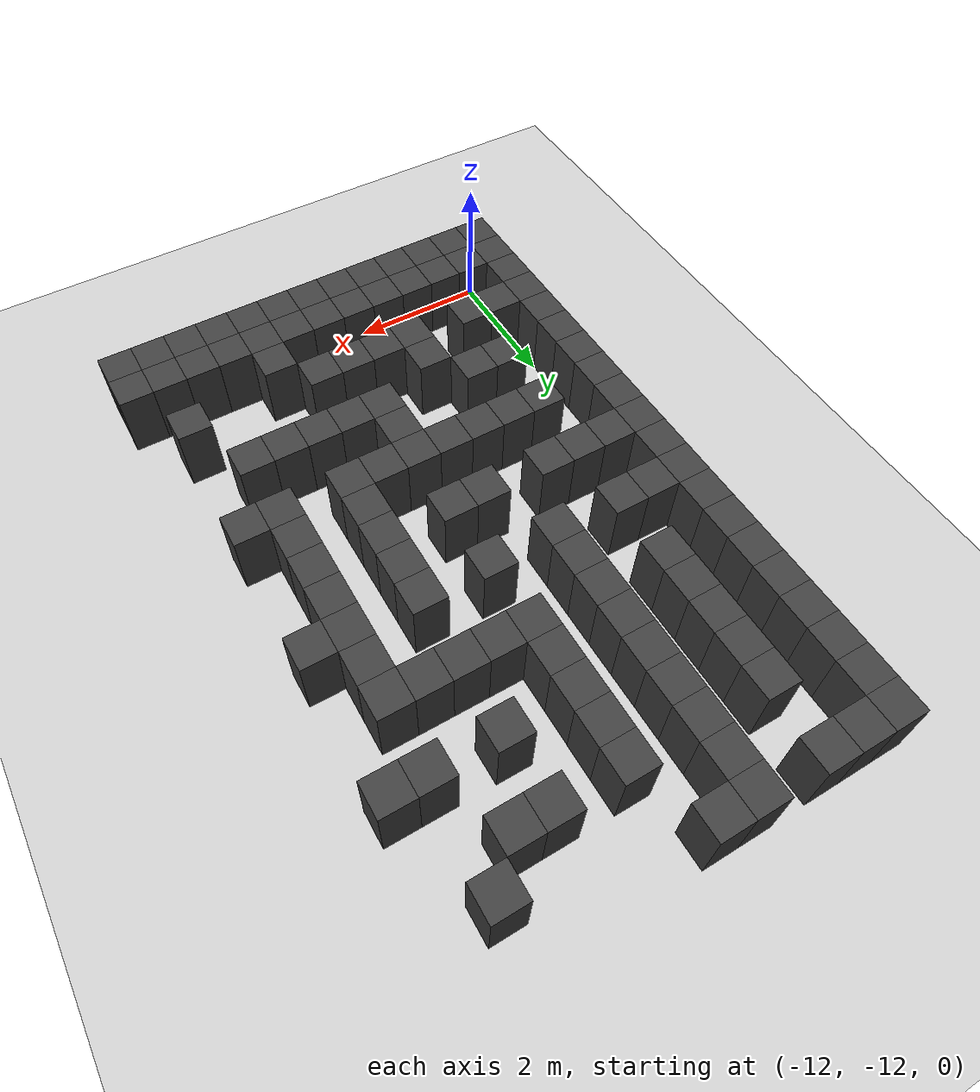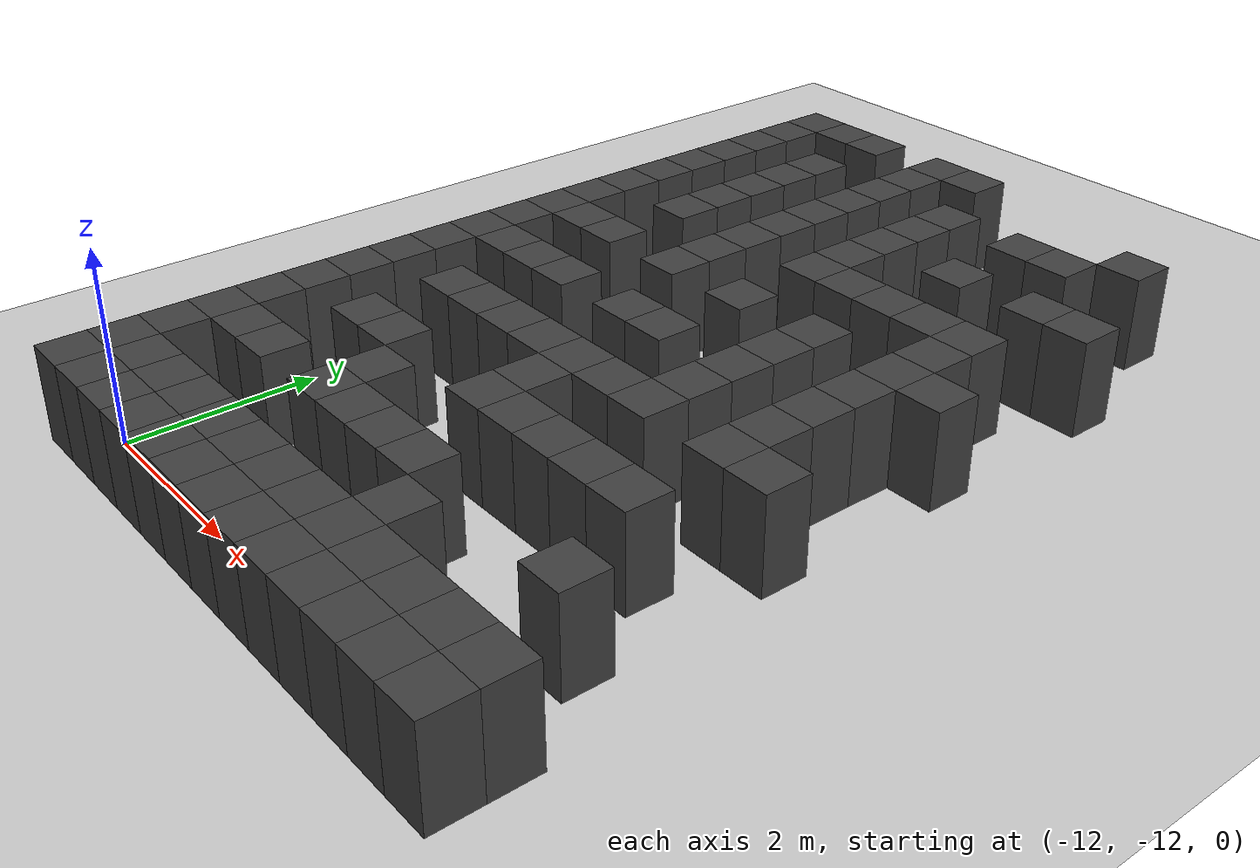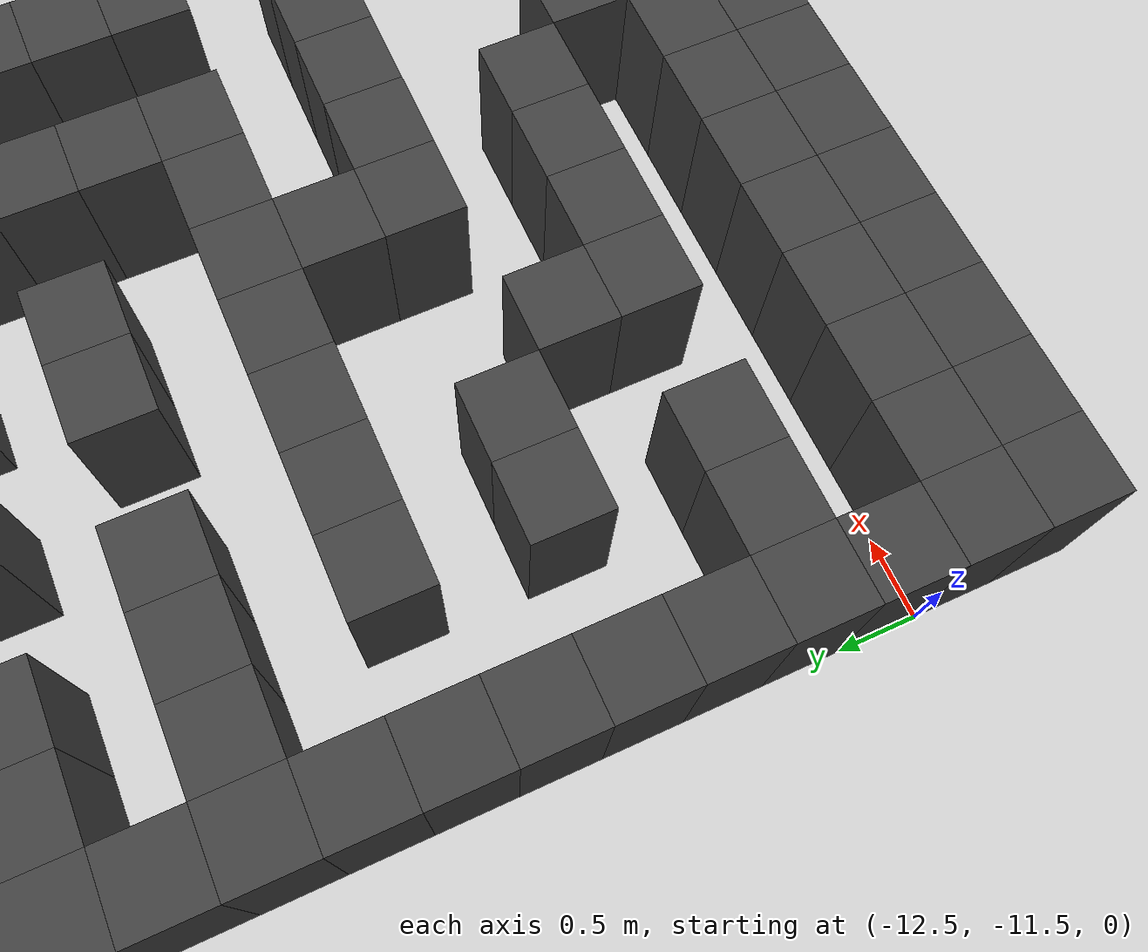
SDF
<sdf version="1.7">
 <world name="map_15168">
  <model name="ground_plane">
   <static>true</static>
   <link name="link">
    <collision name="collision">
     <geometry><plane><normal>0 0 1</normal><size>200 200</size></plane></geometry>
    </collision>
    <visual name="visual">
     <geometry><plane><normal>0 0 1</normal><size>200 200</size></plane></geometry>
     <material><ambient>0.8 0.8 0.8 1</ambient><diffuse>0.8 0.8 0.8 1</diffuse></material>
    </visual>
   </link>
  </model>
  <model name="maze_environment">
   <static>true</static>
   <link name="wall_701">
    <pose>-12.250 -2.750 0.500 0 0 0</pose>
    <collision name="col"><geometry><box><size>0.5 0.5 1.0</size></box></geometry></collision>
    <visual name="vis">
     <geometry><box><size>0.5 0.5 1.0</size></box></geometry>
     <material><ambient>0.15 0.15 0.15 1</ambient><diffuse>0.25 0.25 0.25 1</diffuse></material>
    </visual>
   </link>
   <link name="wall_702">
    <pose>-11.750 -2.750 0.500 0 0 0</pose>
    <collision name="col"><geometry><box><size>0.5 0.5 1.0</size></box></geometry></collision>
    <visual name="vis">
     <geometry><box><size>0.5 0.5 1.0</size></box></geometry>
     <material><ambient>0.15 0.15 0.15 1</ambient><diffuse>0.25 0.25 0.25 1</diffuse></material>
    </visual>
   </link>
   <link name="wall_703">
    <pose>-11.250 -2.750 0.500 0 0 0</pose>
    <collision name="col"><geometry><box><size>0.5 0.5 1.0</size></box></geometry></collision>
    <visual name="vis">
     <geometry><box><size>0.5 0.5 1.0</size></box></geometry>
     <material><ambient>0.15 0.15 0.15 1</ambient><diffuse>0.25 0.25 0.25 1</diffuse></material>
    </visual>
   </link>
   <link name="wall_704">
    <pose>-10.250 -2.750 0.500 0 0 0</pose>
    <collision name="col"><geometry><box><size>0.5 0.5 1.0</size></box></geometry></collision>
    <visual name="vis">
     <geometry><box><size>0.5 0.5 1.0</size></box></geometry>
     <material><ambient>0.15 0.15 0.15 1</ambient><diffuse>0.25 0.25 0.25 1</diffuse></material>
    </visual>
   </link>
   <link name="wall_705">
    <pose>-9.750 -2.750 0.500 0 0 0</pose>
    <collision name="col"><geometry><box><size>0.5 0.5 1.0</size></box></geometry></collision>
    <visual name="vis">
     <geometry><box><size>0.5 0.5 1.0</size></box></geometry>
     <material><ambient>0.15 0.15 0.15 1</ambient><diffuse>0.25 0.25 0.25 1</diffuse></material>
    </visual>
   </link>
   <link name="wall_732">
    <pose>-12.250 -3.250 0.500 0 0 0</pose>
    <collision name="col"><geometry><box><size>0.5 0.5 1.0</size></box></geometry></collision>
    <visual name="vis">
     <geometry><box><size>0.5 0.5 1.0</size></box></geometry>
     <material><ambient>0.15 0.15 0.15 1</ambient><diffuse>0.25 0.25 0.25 1</diffuse></material>
    </visual>
   </link>
   <link name="wall_733">
    <pose>-10.250 -3.250 0.500 0 0 0</pose>
    <collision name="col"><geometry><box><size>0.5 0.5 1.0</size></box></geometry></collision>
    <visual name="vis">
     <geometry><box><size>0.5 0.5 1.0</size></box></geometry>
     <material><ambient>0.15 0.15 0.15 1</ambient><diffuse>0.25 0.25 0.25 1</diffuse></material>
    </visual>
   </link>
   <link name="wall_734">
    <pose>-7.250 -3.250 0.500 0 0 0</pose>
    <collision name="col"><geometry><box><size>0.5 0.5 1.0</size></box></geometry></collision>
    <visual name="vis">
     <geometry><box><size>0.5 0.5 1.0</size></box></geometry>
     <material><ambient>0.15 0.15 0.15 1</ambient><diffuse>0.25 0.25 0.25 1</diffuse></material>
    </visual>
   </link>
   <link name="wall_748">
    <pose>-12.250 -3.750 0.500 0 0 0</pose>
    <collision name="col"><geometry><box><size>0.5 0.5 1.0</size></box></geometry></collision>
    <visual name="vis">
     <geometry><box><size>0.5 0.5 1.0</size></box></geometry>
     <material><ambient>0.15 0.15 0.15 1</ambient><diffuse>0.25 0.25 0.25 1</diffuse></material>
    </visual>
   </link>
   <link name="wall_749">
    <pose>-11.250 -3.750 0.500 0 0 0</pose>
    <collision name="col"><geometry><box><size>0.5 0.5 1.0</size></box></geometry></collision>
    <visual name="vis">
     <geometry><box><size>0.5 0.5 1.0</size></box></geometry>
     <material><ambient>0.15 0.15 0.15 1</ambient><diffuse>0.25 0.25 0.25 1</diffuse></material>
    </visual>
   </link>
   <link name="wall_750">
    <pose>-10.250 -3.750 0.500 0 0 0</pose>
    <collision name="col"><geometry><box><size>0.5 0.5 1.0</size></box></geometry></collision>
    <visual name="vis">
     <geometry><box><size>0.5 0.5 1.0</size></box></geometry>
     <material><ambient>0.15 0.15 0.15 1</ambient><diffuse>0.25 0.25 0.25 1</diffuse></material>
    </visual>
   </link>
   <link name="wall_751">
    <pose>-9.250 -3.750 0.500 0 0 0</pose>
    <collision name="col"><geometry><box><size>0.5 0.5 1.0</size></box></geometry></collision>
    <visual name="vis">
     <geometry><box><size>0.5 0.5 1.0</size></box></geometry>
     <material><ambient>0.15 0.15 0.15 1</ambient><diffuse>0.25 0.25 0.25 1</diffuse></material>
    </visual>
   </link>
   <link name="wall_752">
    <pose>-8.250 -3.750 0.500 0 0 0</pose>
    <collision name="col"><geometry><box><size>0.5 0.5 1.0</size></box></geometry></collision>
    <visual name="vis">
     <geometry><box><size>0.5 0.5 1.0</size></box></geometry>
     <material><ambient>0.15 0.15 0.15 1</ambient><diffuse>0.25 0.25 0.25 1</diffuse></material>
    </visual>
   </link>
   <link name="wall_753">
    <pose>-7.750 -3.750 0.500 0 0 0</pose>
    <collision name="col"><geometry><box><size>0.5 0.5 1.0</size></box></geometry></collision>
    <visual name="vis">
     <geometry><box><size>0.5 0.5 1.0</size></box></geometry>
     <material><ambient>0.15 0.15 0.15 1</ambient><diffuse>0.25 0.25 0.25 1</diffuse></material>
    </visual>
   </link>
   <link name="wall_772">
    <pose>-12.250 -4.250 0.500 0 0 0</pose>
    <collision name="col"><geometry><box><size>0.5 0.5 1.0</size></box></geometry></collision>
    <visual name="vis">
     <geometry><box><size>0.5 0.5 1.0</size></box></geometry>
     <material><ambient>0.15 0.15 0.15 1</ambient><diffuse>0.25 0.25 0.25 1</diffuse></material>
    </visual>
   </link>
   <link name="wall_773">
    <pose>-11.250 -4.250 0.500 0 0 0</pose>
    <collision name="col"><geometry><box><size>0.5 0.5 1.0</size></box></geometry></collision>
    <visual name="vis">
     <geometry><box><size>0.5 0.5 1.0</size></box></geometry>
     <material><ambient>0.15 0.15 0.15 1</ambient><diffuse>0.25 0.25 0.25 1</diffuse></material>
    </visual>
   </link>
   <link name="wall_774">
    <pose>-10.250 -4.250 0.500 0 0 0</pose>
    <collision name="col"><geometry><box><size>0.5 0.5 1.0</size></box></geometry></collision>
    <visual name="vis">
     <geometry><box><size>0.5 0.5 1.0</size></box></geometry>
     <material><ambient>0.15 0.15 0.15 1</ambient><diffuse>0.25 0.25 0.25 1</diffuse></material>
    </visual>
   </link>
   <link name="wall_775">
    <pose>-9.250 -4.250 0.500 0 0 0</pose>
    <collision name="col"><geometry><box><size>0.5 0.5 1.0</size></box></geometry></collision>
    <visual name="vis">
     <geometry><box><size>0.5 0.5 1.0</size></box></geometry>
     <material><ambient>0.15 0.15 0.15 1</ambient><diffuse>0.25 0.25 0.25 1</diffuse></material>
    </visual>
   </link>
   <link name="wall_785">
    <pose>-12.250 -4.750 0.500 0 0 0</pose>
    <collision name="col"><geometry><box><size>0.5 0.5 1.0</size></box></geometry></collision>
    <visual name="vis">
     <geometry><box><size>0.5 0.5 1.0</size></box></geometry>
     <material><ambient>0.15 0.15 0.15 1</ambient><diffuse>0.25 0.25 0.25 1</diffuse></material>
    </visual>
   </link>
   <link name="wall_786">
    <pose>-11.250 -4.750 0.500 0 0 0</pose>
    <collision name="col"><geometry><box><size>0.5 0.5 1.0</size></box></geometry></collision>
    <visual name="vis">
     <geometry><box><size>0.5 0.5 1.0</size></box></geometry>
     <material><ambient>0.15 0.15 0.15 1</ambient><diffuse>0.25 0.25 0.25 1</diffuse></material>
    </visual>
   </link>
   <link name="wall_787">
    <pose>-10.250 -4.750 0.500 0 0 0</pose>
    <collision name="col"><geometry><box><size>0.5 0.5 1.0</size></box></geometry></collision>
    <visual name="vis">
     <geometry><box><size>0.5 0.5 1.0</size></box></geometry>
     <material><ambient>0.15 0.15 0.15 1</ambient><diffuse>0.25 0.25 0.25 1</diffuse></material>
    </visual>
   </link>
   <link name="wall_788">
    <pose>-9.250 -4.750 0.500 0 0 0</pose>
    <collision name="col"><geometry><box><size>0.5 0.5 1.0</size></box></geometry></collision>
    <visual name="vis">
     <geometry><box><size>0.5 0.5 1.0</size></box></geometry>
     <material><ambient>0.15 0.15 0.15 1</ambient><diffuse>0.25 0.25 0.25 1</diffuse></material>
    </visual>
   </link>
   <link name="wall_789">
    <pose>-8.250 -4.750 0.500 0 0 0</pose>
    <collision name="col"><geometry><box><size>0.5 0.5 1.0</size></box></geometry></collision>
    <visual name="vis">
     <geometry><box><size>0.5 0.5 1.0</size></box></geometry>
     <material><ambient>0.15 0.15 0.15 1</ambient><diffuse>0.25 0.25 0.25 1</diffuse></material>
    </visual>
   </link>
   <link name="wall_790">
    <pose>-7.250 -4.750 0.500 0 0 0</pose>
    <collision name="col"><geometry><box><size>0.5 0.5 1.0</size></box></geometry></collision>
    <visual name="vis">
     <geometry><box><size>0.5 0.5 1.0</size></box></geometry>
     <material><ambient>0.15 0.15 0.15 1</ambient><diffuse>0.25 0.25 0.25 1</diffuse></material>
    </visual>
   </link>
   <link name="wall_791">
    <pose>-6.750 -4.750 0.500 0 0 0</pose>
    <collision name="col"><geometry><box><size>0.5 0.5 1.0</size></box></geometry></collision>
    <visual name="vis">
     <geometry><box><size>0.5 0.5 1.0</size></box></geometry>
     <material><ambient>0.15 0.15 0.15 1</ambient><diffuse>0.25 0.25 0.25 1</diffuse></material>
    </visual>
   </link>
   <link name="wall_816">
    <pose>-12.250 -5.250 0.500 0 0 0</pose>
    <collision name="col"><geometry><box><size>0.5 0.5 1.0</size></box></geometry></collision>
    <visual name="vis">
     <geometry><box><size>0.5 0.5 1.0</size></box></geometry>
     <material><ambient>0.15 0.15 0.15 1</ambient><diffuse>0.25 0.25 0.25 1</diffuse></material>
    </visual>
   </link>
   <link name="wall_817">
    <pose>-11.250 -5.250 0.500 0 0 0</pose>
    <collision name="col"><geometry><box><size>0.5 0.5 1.0</size></box></geometry></collision>
    <visual name="vis">
     <geometry><box><size>0.5 0.5 1.0</size></box></geometry>
     <material><ambient>0.15 0.15 0.15 1</ambient><diffuse>0.25 0.25 0.25 1</diffuse></material>
    </visual>
   </link>
   <link name="wall_818">
    <pose>-10.250 -5.250 0.500 0 0 0</pose>
    <collision name="col"><geometry><box><size>0.5 0.5 1.0</size></box></geometry></collision>
    <visual name="vis">
     <geometry><box><size>0.5 0.5 1.0</size></box></geometry>
     <material><ambient>0.15 0.15 0.15 1</ambient><diffuse>0.25 0.25 0.25 1</diffuse></material>
    </visual>
   </link>
   <link name="wall_819">
    <pose>-9.250 -5.250 0.500 0 0 0</pose>
    <collision name="col"><geometry><box><size>0.5 0.5 1.0</size></box></geometry></collision>
    <visual name="vis">
     <geometry><box><size>0.5 0.5 1.0</size></box></geometry>
     <material><ambient>0.15 0.15 0.15 1</ambient><diffuse>0.25 0.25 0.25 1</diffuse></material>
    </visual>
   </link>
   <link name="wall_829">
    <pose>-12.250 -5.750 0.500 0 0 0</pose>
    <collision name="col"><geometry><box><size>0.5 0.5 1.0</size></box></geometry></collision>
    <visual name="vis">
     <geometry><box><size>0.5 0.5 1.0</size></box></geometry>
     <material><ambient>0.15 0.15 0.15 1</ambient><diffuse>0.25 0.25 0.25 1</diffuse></material>
    </visual>
   </link>
   <link name="wall_830">
    <pose>-11.250 -5.750 0.500 0 0 0</pose>
    <collision name="col"><geometry><box><size>0.5 0.5 1.0</size></box></geometry></collision>
    <visual name="vis">
     <geometry><box><size>0.5 0.5 1.0</size></box></geometry>
     <material><ambient>0.15 0.15 0.15 1</ambient><diffuse>0.25 0.25 0.25 1</diffuse></material>
    </visual>
   </link>
   <link name="wall_831">
    <pose>-10.250 -5.750 0.500 0 0 0</pose>
    <collision name="col"><geometry><box><size>0.5 0.5 1.0</size></box></geometry></collision>
    <visual name="vis">
     <geometry><box><size>0.5 0.5 1.0</size></box></geometry>
     <material><ambient>0.15 0.15 0.15 1</ambient><diffuse>0.25 0.25 0.25 1</diffuse></material>
    </visual>
   </link>
   <link name="wall_832">
    <pose>-9.250 -5.750 0.500 0 0 0</pose>
    <collision name="col"><geometry><box><size>0.5 0.5 1.0</size></box></geometry></collision>
    <visual name="vis">
     <geometry><box><size>0.5 0.5 1.0</size></box></geometry>
     <material><ambient>0.15 0.15 0.15 1</ambient><diffuse>0.25 0.25 0.25 1</diffuse></material>
    </visual>
   </link>
   <link name="wall_833">
    <pose>-8.750 -5.750 0.500 0 0 0</pose>
    <collision name="col"><geometry><box><size>0.5 0.5 1.0</size></box></geometry></collision>
    <visual name="vis">
     <geometry><box><size>0.5 0.5 1.0</size></box></geometry>
     <material><ambient>0.15 0.15 0.15 1</ambient><diffuse>0.25 0.25 0.25 1</diffuse></material>
    </visual>
   </link>
   <link name="wall_834">
    <pose>-8.250 -5.750 0.500 0 0 0</pose>
    <collision name="col"><geometry><box><size>0.5 0.5 1.0</size></box></geometry></collision>
    <visual name="vis">
     <geometry><box><size>0.5 0.5 1.0</size></box></geometry>
     <material><ambient>0.15 0.15 0.15 1</ambient><diffuse>0.25 0.25 0.25 1</diffuse></material>
    </visual>
   </link>
   <link name="wall_835">
    <pose>-7.750 -5.750 0.500 0 0 0</pose>
    <collision name="col"><geometry><box><size>0.5 0.5 1.0</size></box></geometry></collision>
    <visual name="vis">
     <geometry><box><size>0.5 0.5 1.0</size></box></geometry>
     <material><ambient>0.15 0.15 0.15 1</ambient><diffuse>0.25 0.25 0.25 1</diffuse></material>
    </visual>
   </link>
   <link name="wall_836">
    <pose>-7.250 -5.750 0.500 0 0 0</pose>
    <collision name="col"><geometry><box><size>0.5 0.5 1.0</size></box></geometry></collision>
    <visual name="vis">
     <geometry><box><size>0.5 0.5 1.0</size></box></geometry>
     <material><ambient>0.15 0.15 0.15 1</ambient><diffuse>0.25 0.25 0.25 1</diffuse></material>
    </visual>
   </link>
   <link name="wall_864">
    <pose>-12.250 -6.250 0.500 0 0 0</pose>
    <collision name="col"><geometry><box><size>0.5 0.5 1.0</size></box></geometry></collision>
    <visual name="vis">
     <geometry><box><size>0.5 0.5 1.0</size></box></geometry>
     <material><ambient>0.15 0.15 0.15 1</ambient><diffuse>0.25 0.25 0.25 1</diffuse></material>
    </visual>
   </link>
   <link name="wall_865">
    <pose>-10.250 -6.250 0.500 0 0 0</pose>
    <collision name="col"><geometry><box><size>0.5 0.5 1.0</size></box></geometry></collision>
    <visual name="vis">
     <geometry><box><size>0.5 0.5 1.0</size></box></geometry>
     <material><ambient>0.15 0.15 0.15 1</ambient><diffuse>0.25 0.25 0.25 1</diffuse></material>
    </visual>
   </link>
   <link name="wall_866">
    <pose>-7.250 -6.250 0.500 0 0 0</pose>
    <collision name="col"><geometry><box><size>0.5 0.5 1.0</size></box></geometry></collision>
    <visual name="vis">
     <geometry><box><size>0.5 0.5 1.0</size></box></geometry>
     <material><ambient>0.15 0.15 0.15 1</ambient><diffuse>0.25 0.25 0.25 1</diffuse></material>
    </visual>
   </link>
   <link name="wall_874">
    <pose>-12.250 -6.750 0.500 0 0 0</pose>
    <collision name="col"><geometry><box><size>0.5 0.5 1.0</size></box></geometry></collision>
    <visual name="vis">
     <geometry><box><size>0.5 0.5 1.0</size></box></geometry>
     <material><ambient>0.15 0.15 0.15 1</ambient><diffuse>0.25 0.25 0.25 1</diffuse></material>
    </visual>
   </link>
   <link name="wall_875">
    <pose>-11.750 -6.750 0.500 0 0 0</pose>
    <collision name="col"><geometry><box><size>0.5 0.5 1.0</size></box></geometry></collision>
    <visual name="vis">
     <geometry><box><size>0.5 0.5 1.0</size></box></geometry>
     <material><ambient>0.15 0.15 0.15 1</ambient><diffuse>0.25 0.25 0.25 1</diffuse></material>
    </visual>
   </link>
   <link name="wall_876">
    <pose>-11.250 -6.750 0.500 0 0 0</pose>
    <collision name="col"><geometry><box><size>0.5 0.5 1.0</size></box></geometry></collision>
    <visual name="vis">
     <geometry><box><size>0.5 0.5 1.0</size></box></geometry>
     <material><ambient>0.15 0.15 0.15 1</ambient><diffuse>0.25 0.25 0.25 1</diffuse></material>
    </visual>
   </link>
   <link name="wall_877">
    <pose>-10.250 -6.750 0.500 0 0 0</pose>
    <collision name="col"><geometry><box><size>0.5 0.5 1.0</size></box></geometry></collision>
    <visual name="vis">
     <geometry><box><size>0.5 0.5 1.0</size></box></geometry>
     <material><ambient>0.15 0.15 0.15 1</ambient><diffuse>0.25 0.25 0.25 1</diffuse></material>
    </visual>
   </link>
   <link name="wall_878">
    <pose>-9.250 -6.750 0.500 0 0 0</pose>
    <collision name="col"><geometry><box><size>0.5 0.5 1.0</size></box></geometry></collision>
    <visual name="vis">
     <geometry><box><size>0.5 0.5 1.0</size></box></geometry>
     <material><ambient>0.15 0.15 0.15 1</ambient><diffuse>0.25 0.25 0.25 1</diffuse></material>
    </visual>
   </link>
   <link name="wall_879">
    <pose>-8.250 -6.750 0.500 0 0 0</pose>
    <collision name="col"><geometry><box><size>0.5 0.5 1.0</size></box></geometry></collision>
    <visual name="vis">
     <geometry><box><size>0.5 0.5 1.0</size></box></geometry>
     <material><ambient>0.15 0.15 0.15 1</ambient><diffuse>0.25 0.25 0.25 1</diffuse></material>
    </visual>
   </link>
   <link name="wall_880">
    <pose>-7.250 -6.750 0.500 0 0 0</pose>
    <collision name="col"><geometry><box><size>0.5 0.5 1.0</size></box></geometry></collision>
    <visual name="vis">
     <geometry><box><size>0.5 0.5 1.0</size></box></geometry>
     <material><ambient>0.15 0.15 0.15 1</ambient><diffuse>0.25 0.25 0.25 1</diffuse></material>
    </visual>
   </link>
   <link name="wall_881">
    <pose>-6.750 -6.750 0.500 0 0 0</pose>
    <collision name="col"><geometry><box><size>0.5 0.5 1.0</size></box></geometry></collision>
    <visual name="vis">
     <geometry><box><size>0.5 0.5 1.0</size></box></geometry>
     <material><ambient>0.15 0.15 0.15 1</ambient><diffuse>0.25 0.25 0.25 1</diffuse></material>
    </visual>
   </link>
   <link name="wall_912">
    <pose>-12.250 -7.250 0.500 0 0 0</pose>
    <collision name="col"><geometry><box><size>0.5 0.5 1.0</size></box></geometry></collision>
    <visual name="vis">
     <geometry><box><size>0.5 0.5 1.0</size></box></geometry>
     <material><ambient>0.15 0.15 0.15 1</ambient><diffuse>0.25 0.25 0.25 1</diffuse></material>
    </visual>
   </link>
   <link name="wall_913">
    <pose>-8.250 -7.250 0.500 0 0 0</pose>
    <collision name="col"><geometry><box><size>0.5 0.5 1.0</size></box></geometry></collision>
    <visual name="vis">
     <geometry><box><size>0.5 0.5 1.0</size></box></geometry>
     <material><ambient>0.15 0.15 0.15 1</ambient><diffuse>0.25 0.25 0.25 1</diffuse></material>
    </visual>
   </link>
   <link name="wall_914">
    <pose>-7.250 -7.250 0.500 0 0 0</pose>
    <collision name="col"><geometry><box><size>0.5 0.5 1.0</size></box></geometry></collision>
    <visual name="vis">
     <geometry><box><size>0.5 0.5 1.0</size></box></geometry>
     <material><ambient>0.15 0.15 0.15 1</ambient><diffuse>0.25 0.25 0.25 1</diffuse></material>
    </visual>
   </link>
   <link name="wall_923">
    <pose>-12.250 -7.750 0.500 0 0 0</pose>
    <collision name="col"><geometry><box><size>0.5 0.5 1.0</size></box></geometry></collision>
    <visual name="vis">
     <geometry><box><size>0.5 0.5 1.0</size></box></geometry>
     <material><ambient>0.15 0.15 0.15 1</ambient><diffuse>0.25 0.25 0.25 1</diffuse></material>
    </visual>
   </link>
   <link name="wall_924">
    <pose>-11.750 -7.750 0.500 0 0 0</pose>
    <collision name="col"><geometry><box><size>0.5 0.5 1.0</size></box></geometry></collision>
    <visual name="vis">
     <geometry><box><size>0.5 0.5 1.0</size></box></geometry>
     <material><ambient>0.15 0.15 0.15 1</ambient><diffuse>0.25 0.25 0.25 1</diffuse></material>
    </visual>
   </link>
   <link name="wall_925">
    <pose>-11.250 -7.750 0.500 0 0 0</pose>
    <collision name="col"><geometry><box><size>0.5 0.5 1.0</size></box></geometry></collision>
    <visual name="vis">
     <geometry><box><size>0.5 0.5 1.0</size></box></geometry>
     <material><ambient>0.15 0.15 0.15 1</ambient><diffuse>0.25 0.25 0.25 1</diffuse></material>
    </visual>
   </link>
   <link name="wall_926">
    <pose>-10.750 -7.750 0.500 0 0 0</pose>
    <collision name="col"><geometry><box><size>0.5 0.5 1.0</size></box></geometry></collision>
    <visual name="vis">
     <geometry><box><size>0.5 0.5 1.0</size></box></geometry>
     <material><ambient>0.15 0.15 0.15 1</ambient><diffuse>0.25 0.25 0.25 1</diffuse></material>
    </visual>
   </link>
   <link name="wall_927">
    <pose>-9.750 -7.750 0.500 0 0 0</pose>
    <collision name="col"><geometry><box><size>0.5 0.5 1.0</size></box></geometry></collision>
    <visual name="vis">
     <geometry><box><size>0.5 0.5 1.0</size></box></geometry>
     <material><ambient>0.15 0.15 0.15 1</ambient><diffuse>0.25 0.25 0.25 1</diffuse></material>
    </visual>
   </link>
   <link name="wall_928">
    <pose>-9.250 -7.750 0.500 0 0 0</pose>
    <collision name="col"><geometry><box><size>0.5 0.5 1.0</size></box></geometry></collision>
    <visual name="vis">
     <geometry><box><size>0.5 0.5 1.0</size></box></geometry>
     <material><ambient>0.15 0.15 0.15 1</ambient><diffuse>0.25 0.25 0.25 1</diffuse></material>
    </visual>
   </link>
   <link name="wall_929">
    <pose>-8.250 -7.750 0.500 0 0 0</pose>
    <collision name="col"><geometry><box><size>0.5 0.5 1.0</size></box></geometry></collision>
    <visual name="vis">
     <geometry><box><size>0.5 0.5 1.0</size></box></geometry>
     <material><ambient>0.15 0.15 0.15 1</ambient><diffuse>0.25 0.25 0.25 1</diffuse></material>
    </visual>
   </link>
   <link name="wall_930">
    <pose>-7.250 -7.750 0.500 0 0 0</pose>
    <collision name="col"><geometry><box><size>0.5 0.5 1.0</size></box></geometry></collision>
    <visual name="vis">
     <geometry><box><size>0.5 0.5 1.0</size></box></geometry>
     <material><ambient>0.15 0.15 0.15 1</ambient><diffuse>0.25 0.25 0.25 1</diffuse></material>
    </visual>
   </link>
   <link name="wall_955">
    <pose>-12.250 -8.250 0.500 0 0 0</pose>
    <collision name="col"><geometry><box><size>0.5 0.5 1.0</size></box></geometry></collision>
    <visual name="vis">
     <geometry><box><size>0.5 0.5 1.0</size></box></geometry>
     <material><ambient>0.15 0.15 0.15 1</ambient><diffuse>0.25 0.25 0.25 1</diffuse></material>
    </visual>
   </link>
   <link name="wall_956">
    <pose>-8.250 -8.250 0.500 0 0 0</pose>
    <collision name="col"><geometry><box><size>0.5 0.5 1.0</size></box></geometry></collision>
    <visual name="vis">
     <geometry><box><size>0.5 0.5 1.0</size></box></geometry>
     <material><ambient>0.15 0.15 0.15 1</ambient><diffuse>0.25 0.25 0.25 1</diffuse></material>
    </visual>
   </link>
   <link name="wall_957">
    <pose>-7.250 -8.250 0.500 0 0 0</pose>
    <collision name="col"><geometry><box><size>0.5 0.5 1.0</size></box></geometry></collision>
    <visual name="vis">
     <geometry><box><size>0.5 0.5 1.0</size></box></geometry>
     <material><ambient>0.15 0.15 0.15 1</ambient><diffuse>0.25 0.25 0.25 1</diffuse></material>
    </visual>
   </link>
   <link name="wall_968">
    <pose>-12.250 -8.750 0.500 0 0 0</pose>
    <collision name="col"><geometry><box><size>0.5 0.5 1.0</size></box></geometry></collision>
    <visual name="vis">
     <geometry><box><size>0.5 0.5 1.0</size></box></geometry>
     <material><ambient>0.15 0.15 0.15 1</ambient><diffuse>0.25 0.25 0.25 1</diffuse></material>
    </visual>
   </link>
   <link name="wall_969">
    <pose>-11.250 -8.750 0.500 0 0 0</pose>
    <collision name="col"><geometry><box><size>0.5 0.5 1.0</size></box></geometry></collision>
    <visual name="vis">
     <geometry><box><size>0.5 0.5 1.0</size></box></geometry>
     <material><ambient>0.15 0.15 0.15 1</ambient><diffuse>0.25 0.25 0.25 1</diffuse></material>
    </visual>
   </link>
   <link name="wall_970">
    <pose>-10.750 -8.750 0.500 0 0 0</pose>
    <collision name="col"><geometry><box><size>0.5 0.5 1.0</size></box></geometry></collision>
    <visual name="vis">
     <geometry><box><size>0.5 0.5 1.0</size></box></geometry>
     <material><ambient>0.15 0.15 0.15 1</ambient><diffuse>0.25 0.25 0.25 1</diffuse></material>
    </visual>
   </link>
   <link name="wall_971">
    <pose>-10.250 -8.750 0.500 0 0 0</pose>
    <collision name="col"><geometry><box><size>0.5 0.5 1.0</size></box></geometry></collision>
    <visual name="vis">
     <geometry><box><size>0.5 0.5 1.0</size></box></geometry>
     <material><ambient>0.15 0.15 0.15 1</ambient><diffuse>0.25 0.25 0.25 1</diffuse></material>
    </visual>
   </link>
   <link name="wall_972">
    <pose>-9.750 -8.750 0.500 0 0 0</pose>
    <collision name="col"><geometry><box><size>0.5 0.5 1.0</size></box></geometry></collision>
    <visual name="vis">
     <geometry><box><size>0.5 0.5 1.0</size></box></geometry>
     <material><ambient>0.15 0.15 0.15 1</ambient><diffuse>0.25 0.25 0.25 1</diffuse></material>
    </visual>
   </link>
   <link name="wall_973">
    <pose>-9.250 -8.750 0.500 0 0 0</pose>
    <collision name="col"><geometry><box><size>0.5 0.5 1.0</size></box></geometry></collision>
    <visual name="vis">
     <geometry><box><size>0.5 0.5 1.0</size></box></geometry>
     <material><ambient>0.15 0.15 0.15 1</ambient><diffuse>0.25 0.25 0.25 1</diffuse></material>
    </visual>
   </link>
   <link name="wall_974">
    <pose>-8.750 -8.750 0.500 0 0 0</pose>
    <collision name="col"><geometry><box><size>0.5 0.5 1.0</size></box></geometry></collision>
    <visual name="vis">
     <geometry><box><size>0.5 0.5 1.0</size></box></geometry>
     <material><ambient>0.15 0.15 0.15 1</ambient><diffuse>0.25 0.25 0.25 1</diffuse></material>
    </visual>
   </link>
   <link name="wall_975">
    <pose>-8.250 -8.750 0.500 0 0 0</pose>
    <collision name="col"><geometry><box><size>0.5 0.5 1.0</size></box></geometry></collision>
    <visual name="vis">
     <geometry><box><size>0.5 0.5 1.0</size></box></geometry>
     <material><ambient>0.15 0.15 0.15 1</ambient><diffuse>0.25 0.25 0.25 1</diffuse></material>
    </visual>
   </link>
   <link name="wall_976">
    <pose>-7.250 -8.750 0.500 0 0 0</pose>
    <collision name="col"><geometry><box><size>0.5 0.5 1.0</size></box></geometry></collision>
    <visual name="vis">
     <geometry><box><size>0.5 0.5 1.0</size></box></geometry>
     <material><ambient>0.15 0.15 0.15 1</ambient><diffuse>0.25 0.25 0.25 1</diffuse></material>
    </visual>
   </link>
   <link name="wall_977">
    <pose>-6.750 -8.750 0.500 0 0 0</pose>
    <collision name="col"><geometry><box><size>0.5 0.5 1.0</size></box></geometry></collision>
    <visual name="vis">
     <geometry><box><size>0.5 0.5 1.0</size></box></geometry>
     <material><ambient>0.15 0.15 0.15 1</ambient><diffuse>0.25 0.25 0.25 1</diffuse></material>
    </visual>
   </link>
   <link name="wall_1004">
    <pose>-12.250 -9.250 0.500 0 0 0</pose>
    <collision name="col"><geometry><box><size>0.5 0.5 1.0</size></box></geometry></collision>
    <visual name="vis">
     <geometry><box><size>0.5 0.5 1.0</size></box></geometry>
     <material><ambient>0.15 0.15 0.15 1</ambient><diffuse>0.25 0.25 0.25 1</diffuse></material>
    </visual>
   </link>
   <link name="wall_1005">
    <pose>-9.250 -9.250 0.500 0 0 0</pose>
    <collision name="col"><geometry><box><size>0.5 0.5 1.0</size></box></geometry></collision>
    <visual name="vis">
     <geometry><box><size>0.5 0.5 1.0</size></box></geometry>
     <material><ambient>0.15 0.15 0.15 1</ambient><diffuse>0.25 0.25 0.25 1</diffuse></material>
    </visual>
   </link>
   <link name="wall_1014">
    <pose>-12.250 -9.750 0.500 0 0 0</pose>
    <collision name="col"><geometry><box><size>0.5 0.5 1.0</size></box></geometry></collision>
    <visual name="vis">
     <geometry><box><size>0.5 0.5 1.0</size></box></geometry>
     <material><ambient>0.15 0.15 0.15 1</ambient><diffuse>0.25 0.25 0.25 1</diffuse></material>
    </visual>
   </link>
   <link name="wall_1015">
    <pose>-11.250 -9.750 0.500 0 0 0</pose>
    <collision name="col"><geometry><box><size>0.5 0.5 1.0</size></box></geometry></collision>
    <visual name="vis">
     <geometry><box><size>0.5 0.5 1.0</size></box></geometry>
     <material><ambient>0.15 0.15 0.15 1</ambient><diffuse>0.25 0.25 0.25 1</diffuse></material>
    </visual>
   </link>
   <link name="wall_1016">
    <pose>-10.750 -9.750 0.500 0 0 0</pose>
    <collision name="col"><geometry><box><size>0.5 0.5 1.0</size></box></geometry></collision>
    <visual name="vis">
     <geometry><box><size>0.5 0.5 1.0</size></box></geometry>
     <material><ambient>0.15 0.15 0.15 1</ambient><diffuse>0.25 0.25 0.25 1</diffuse></material>
    </visual>
   </link>
   <link name="wall_1017">
    <pose>-9.250 -9.750 0.500 0 0 0</pose>
    <collision name="col"><geometry><box><size>0.5 0.5 1.0</size></box></geometry></collision>
    <visual name="vis">
     <geometry><box><size>0.5 0.5 1.0</size></box></geometry>
     <material><ambient>0.15 0.15 0.15 1</ambient><diffuse>0.25 0.25 0.25 1</diffuse></material>
    </visual>
   </link>
   <link name="wall_1018">
    <pose>-8.750 -9.750 0.500 0 0 0</pose>
    <collision name="col"><geometry><box><size>0.5 0.5 1.0</size></box></geometry></collision>
    <visual name="vis">
     <geometry><box><size>0.5 0.5 1.0</size></box></geometry>
     <material><ambient>0.15 0.15 0.15 1</ambient><diffuse>0.25 0.25 0.25 1</diffuse></material>
    </visual>
   </link>
   <link name="wall_1019">
    <pose>-8.250 -9.750 0.500 0 0 0</pose>
    <collision name="col"><geometry><box><size>0.5 0.5 1.0</size></box></geometry></collision>
    <visual name="vis">
     <geometry><box><size>0.5 0.5 1.0</size></box></geometry>
     <material><ambient>0.15 0.15 0.15 1</ambient><diffuse>0.25 0.25 0.25 1</diffuse></material>
    </visual>
   </link>
   <link name="wall_1020">
    <pose>-7.750 -9.750 0.500 0 0 0</pose>
    <collision name="col"><geometry><box><size>0.5 0.5 1.0</size></box></geometry></collision>
    <visual name="vis">
     <geometry><box><size>0.5 0.5 1.0</size></box></geometry>
     <material><ambient>0.15 0.15 0.15 1</ambient><diffuse>0.25 0.25 0.25 1</diffuse></material>
    </visual>
   </link>
   <link name="wall_1021">
    <pose>-7.250 -9.750 0.500 0 0 0</pose>
    <collision name="col"><geometry><box><size>0.5 0.5 1.0</size></box></geometry></collision>
    <visual name="vis">
     <geometry><box><size>0.5 0.5 1.0</size></box></geometry>
     <material><ambient>0.15 0.15 0.15 1</ambient><diffuse>0.25 0.25 0.25 1</diffuse></material>
    </visual>
   </link>
   <link name="wall_1049">
    <pose>-12.250 -10.250 0.500 0 0 0</pose>
    <collision name="col"><geometry><box><size>0.5 0.5 1.0</size></box></geometry></collision>
    <visual name="vis">
     <geometry><box><size>0.5 0.5 1.0</size></box></geometry>
     <material><ambient>0.15 0.15 0.15 1</ambient><diffuse>0.25 0.25 0.25 1</diffuse></material>
    </visual>
   </link>
   <link name="wall_1050">
    <pose>-10.250 -10.250 0.500 0 0 0</pose>
    <collision name="col"><geometry><box><size>0.5 0.5 1.0</size></box></geometry></collision>
    <visual name="vis">
     <geometry><box><size>0.5 0.5 1.0</size></box></geometry>
     <material><ambient>0.15 0.15 0.15 1</ambient><diffuse>0.25 0.25 0.25 1</diffuse></material>
    </visual>
   </link>
   <link name="wall_1062">
    <pose>-12.250 -10.750 0.500 0 0 0</pose>
    <collision name="col"><geometry><box><size>0.5 0.5 1.0</size></box></geometry></collision>
    <visual name="vis">
     <geometry><box><size>0.5 0.5 1.0</size></box></geometry>
     <material><ambient>0.15 0.15 0.15 1</ambient><diffuse>0.25 0.25 0.25 1</diffuse></material>
    </visual>
   </link>
   <link name="wall_1063">
    <pose>-11.750 -10.750 0.500 0 0 0</pose>
    <collision name="col"><geometry><box><size>0.5 0.5 1.0</size></box></geometry></collision>
    <visual name="vis">
     <geometry><box><size>0.5 0.5 1.0</size></box></geometry>
     <material><ambient>0.15 0.15 0.15 1</ambient><diffuse>0.25 0.25 0.25 1</diffuse></material>
    </visual>
   </link>
   <link name="wall_1064">
    <pose>-11.250 -10.750 0.500 0 0 0</pose>
    <collision name="col"><geometry><box><size>0.5 0.5 1.0</size></box></geometry></collision>
    <visual name="vis">
     <geometry><box><size>0.5 0.5 1.0</size></box></geometry>
     <material><ambient>0.15 0.15 0.15 1</ambient><diffuse>0.25 0.25 0.25 1</diffuse></material>
    </visual>
   </link>
   <link name="wall_1065">
    <pose>-10.250 -10.750 0.500 0 0 0</pose>
    <collision name="col"><geometry><box><size>0.5 0.5 1.0</size></box></geometry></collision>
    <visual name="vis">
     <geometry><box><size>0.5 0.5 1.0</size></box></geometry>
     <material><ambient>0.15 0.15 0.15 1</ambient><diffuse>0.25 0.25 0.25 1</diffuse></material>
    </visual>
   </link>
   <link name="wall_1066">
    <pose>-9.750 -10.750 0.500 0 0 0</pose>
    <collision name="col"><geometry><box><size>0.5 0.5 1.0</size></box></geometry></collision>
    <visual name="vis">
     <geometry><box><size>0.5 0.5 1.0</size></box></geometry>
     <material><ambient>0.15 0.15 0.15 1</ambient><diffuse>0.25 0.25 0.25 1</diffuse></material>
    </visual>
   </link>
   <link name="wall_1067">
    <pose>-9.250 -10.750 0.500 0 0 0</pose>
    <collision name="col"><geometry><box><size>0.5 0.5 1.0</size></box></geometry></collision>
    <visual name="vis">
     <geometry><box><size>0.5 0.5 1.0</size></box></geometry>
     <material><ambient>0.15 0.15 0.15 1</ambient><diffuse>0.25 0.25 0.25 1</diffuse></material>
    </visual>
   </link>
   <link name="wall_1068">
    <pose>-8.750 -10.750 0.500 0 0 0</pose>
    <collision name="col"><geometry><box><size>0.5 0.5 1.0</size></box></geometry></collision>
    <visual name="vis">
     <geometry><box><size>0.5 0.5 1.0</size></box></geometry>
     <material><ambient>0.15 0.15 0.15 1</ambient><diffuse>0.25 0.25 0.25 1</diffuse></material>
    </visual>
   </link>
   <link name="wall_1069">
    <pose>-6.750 -10.750 0.500 0 0 0</pose>
    <collision name="col"><geometry><box><size>0.5 0.5 1.0</size></box></geometry></collision>
    <visual name="vis">
     <geometry><box><size>0.5 0.5 1.0</size></box></geometry>
     <material><ambient>0.15 0.15 0.15 1</ambient><diffuse>0.25 0.25 0.25 1</diffuse></material>
    </visual>
   </link>
   <link name="wall_1098">
    <pose>-12.250 -11.250 0.500 0 0 0</pose>
    <collision name="col"><geometry><box><size>0.5 0.5 1.0</size></box></geometry></collision>
    <visual name="vis">
     <geometry><box><size>0.5 0.5 1.0</size></box></geometry>
     <material><ambient>0.15 0.15 0.15 1</ambient><diffuse>0.25 0.25 0.25 1</diffuse></material>
    </visual>
   </link>
   <link name="wall_1099">
    <pose>-8.250 -11.250 0.500 0 0 0</pose>
    <collision name="col"><geometry><box><size>0.5 0.5 1.0</size></box></geometry></collision>
    <visual name="vis">
     <geometry><box><size>0.5 0.5 1.0</size></box></geometry>
     <material><ambient>0.15 0.15 0.15 1</ambient><diffuse>0.25 0.25 0.25 1</diffuse></material>
    </visual>
   </link>
   <link name="wall_1103">
    <pose>-12.250 -11.750 0.500 0 0 0</pose>
    <collision name="col"><geometry><box><size>0.5 0.5 1.0</size></box></geometry></collision>
    <visual name="vis">
     <geometry><box><size>0.5 0.5 1.0</size></box></geometry>
     <material><ambient>0.15 0.15 0.15 1</ambient><diffuse>0.25 0.25 0.25 1</diffuse></material>
    </visual>
   </link>
   <link name="wall_1104">
    <pose>-11.750 -11.750 0.500 0 0 0</pose>
    <collision name="col"><geometry><box><size>0.5 0.5 1.0</size></box></geometry></collision>
    <visual name="vis">
     <geometry><box><size>0.5 0.5 1.0</size></box></geometry>
     <material><ambient>0.15 0.15 0.15 1</ambient><diffuse>0.25 0.25 0.25 1</diffuse></material>
    </visual>
   </link>
   <link name="wall_1105">
    <pose>-11.250 -11.750 0.500 0 0 0</pose>
    <collision name="col"><geometry><box><size>0.5 0.5 1.0</size></box></geometry></collision>
    <visual name="vis">
     <geometry><box><size>0.5 0.5 1.0</size></box></geometry>
     <material><ambient>0.15 0.15 0.15 1</ambient><diffuse>0.25 0.25 0.25 1</diffuse></material>
    </visual>
   </link>
   <link name="wall_1106">
    <pose>-10.750 -11.750 0.500 0 0 0</pose>
    <collision name="col"><geometry><box><size>0.5 0.5 1.0</size></box></geometry></collision>
    <visual name="vis">
     <geometry><box><size>0.5 0.5 1.0</size></box></geometry>
     <material><ambient>0.15 0.15 0.15 1</ambient><diffuse>0.25 0.25 0.25 1</diffuse></material>
    </visual>
   </link>
   <link name="wall_1107">
    <pose>-10.250 -11.750 0.500 0 0 0</pose>
    <collision name="col"><geometry><box><size>0.5 0.5 1.0</size></box></geometry></collision>
    <visual name="vis">
     <geometry><box><size>0.5 0.5 1.0</size></box></geometry>
     <material><ambient>0.15 0.15 0.15 1</ambient><diffuse>0.25 0.25 0.25 1</diffuse></material>
    </visual>
   </link>
   <link name="wall_1108">
    <pose>-9.750 -11.750 0.500 0 0 0</pose>
    <collision name="col"><geometry><box><size>0.5 0.5 1.0</size></box></geometry></collision>
    <visual name="vis">
     <geometry><box><size>0.5 0.5 1.0</size></box></geometry>
     <material><ambient>0.15 0.15 0.15 1</ambient><diffuse>0.25 0.25 0.25 1</diffuse></material>
    </visual>
   </link>
   <link name="wall_1109">
    <pose>-9.250 -11.750 0.500 0 0 0</pose>
    <collision name="col"><geometry><box><size>0.5 0.5 1.0</size></box></geometry></collision>
    <visual name="vis">
     <geometry><box><size>0.5 0.5 1.0</size></box></geometry>
     <material><ambient>0.15 0.15 0.15 1</ambient><diffuse>0.25 0.25 0.25 1</diffuse></material>
    </visual>
   </link>
   <link name="wall_1110">
    <pose>-8.750 -11.750 0.500 0 0 0</pose>
    <collision name="col"><geometry><box><size>0.5 0.5 1.0</size></box></geometry></collision>
    <visual name="vis">
     <geometry><box><size>0.5 0.5 1.0</size></box></geometry>
     <material><ambient>0.15 0.15 0.15 1</ambient><diffuse>0.25 0.25 0.25 1</diffuse></material>
    </visual>
   </link>
   <link name="wall_1111">
    <pose>-8.250 -11.750 0.500 0 0 0</pose>
    <collision name="col"><geometry><box><size>0.5 0.5 1.0</size></box></geometry></collision>
    <visual name="vis">
     <geometry><box><size>0.5 0.5 1.0</size></box></geometry>
     <material><ambient>0.15 0.15 0.15 1</ambient><diffuse>0.25 0.25 0.25 1</diffuse></material>
    </visual>
   </link>
   <link name="wall_1112">
    <pose>-7.750 -11.750 0.500 0 0 0</pose>
    <collision name="col"><geometry><box><size>0.5 0.5 1.0</size></box></geometry></collision>
    <visual name="vis">
     <geometry><box><size>0.5 0.5 1.0</size></box></geometry>
     <material><ambient>0.15 0.15 0.15 1</ambient><diffuse>0.25 0.25 0.25 1</diffuse></material>
    </visual>
   </link>
   <link name="wall_1113">
    <pose>-7.250 -11.750 0.500 0 0 0</pose>
    <collision name="col"><geometry><box><size>0.5 0.5 1.0</size></box></geometry></collision>
    <visual name="vis">
     <geometry><box><size>0.5 0.5 1.0</size></box></geometry>
     <material><ambient>0.15 0.15 0.15 1</ambient><diffuse>0.25 0.25 0.25 1</diffuse></material>
    </visual>
   </link>
   <link name="wall_1114">
    <pose>-6.750 -11.750 0.500 0 0 0</pose>
    <collision name="col"><geometry><box><size>0.5 0.5 1.0</size></box></geometry></collision>
    <visual name="vis">
     <geometry><box><size>0.5 0.5 1.0</size></box></geometry>
     <material><ambient>0.15 0.15 0.15 1</ambient><diffuse>0.25 0.25 0.25 1</diffuse></material>
    </visual>
   </link>
   <link name="wall_1115">
    <pose>-6.250 -11.750 0.500 0 0 0</pose>
    <collision name="col"><geometry><box><size>0.5 0.5 1.0</size></box></geometry></collision>
    <visual name="vis">
     <geometry><box><size>0.5 0.5 1.0</size></box></geometry>
     <material><ambient>0.15 0.15 0.15 1</ambient><diffuse>0.25 0.25 0.25 1</diffuse></material>
    </visual>
   </link>
   <link name="wall_1151">
    <pose>-12.250 -12.250 0.500 0 0 0</pose>
    <collision name="col"><geometry><box><size>0.5 0.5 1.0</size></box></geometry></collision>
    <visual name="vis">
     <geometry><box><size>0.5 0.5 1.0</size></box></geometry>
     <material><ambient>0.15 0.15 0.15 1</ambient><diffuse>0.25 0.25 0.25 1</diffuse></material>
    </visual>
   </link>
   <link name="wall_1152">
    <pose>-11.750 -12.250 0.500 0 0 0</pose>
    <collision name="col"><geometry><box><size>0.5 0.5 1.0</size></box></geometry></collision>
    <visual name="vis">
     <geometry><box><size>0.5 0.5 1.0</size></box></geometry>
     <material><ambient>0.15 0.15 0.15 1</ambient><diffuse>0.25 0.25 0.25 1</diffuse></material>
    </visual>
   </link>
   <link name="wall_1153">
    <pose>-11.250 -12.250 0.500 0 0 0</pose>
    <collision name="col"><geometry><box><size>0.5 0.5 1.0</size></box></geometry></collision>
    <visual name="vis">
     <geometry><box><size>0.5 0.5 1.0</size></box></geometry>
     <material><ambient>0.15 0.15 0.15 1</ambient><diffuse>0.25 0.25 0.25 1</diffuse></material>
    </visual>
   </link>
   <link name="wall_1154">
    <pose>-10.750 -12.250 0.500 0 0 0</pose>
    <collision name="col"><geometry><box><size>0.5 0.5 1.0</size></box></geometry></collision>
    <visual name="vis">
     <geometry><box><size>0.5 0.5 1.0</size></box></geometry>
     <material><ambient>0.15 0.15 0.15 1</ambient><diffuse>0.25 0.25 0.25 1</diffuse></material>
    </visual>
   </link>
   <link name="wall_1155">
    <pose>-10.250 -12.250 0.500 0 0 0</pose>
    <collision name="col"><geometry><box><size>0.5 0.5 1.0</size></box></geometry></collision>
    <visual name="vis">
     <geometry><box><size>0.5 0.5 1.0</size></box></geometry>
     <material><ambient>0.15 0.15 0.15 1</ambient><diffuse>0.25 0.25 0.25 1</diffuse></material>
    </visual>
   </link>
   <link name="wall_1156">
    <pose>-9.750 -12.250 0.500 0 0 0</pose>
    <collision name="col"><geometry><box><size>0.5 0.5 1.0</size></box></geometry></collision>
    <visual name="vis">
     <geometry><box><size>0.5 0.5 1.0</size></box></geometry>
     <material><ambient>0.15 0.15 0.15 1</ambient><diffuse>0.25 0.25 0.25 1</diffuse></material>
    </visual>
   </link>
   <link name="wall_1157">
    <pose>-9.250 -12.250 0.500 0 0 0</pose>
    <collision name="col"><geometry><box><size>0.5 0.5 1.0</size></box></geometry></collision>
    <visual name="vis">
     <geometry><box><size>0.5 0.5 1.0</size></box></geometry>
     <material><ambient>0.15 0.15 0.15 1</ambient><diffuse>0.25 0.25 0.25 1</diffuse></material>
    </visual>
   </link>
   <link name="wall_1158">
    <pose>-8.750 -12.250 0.500 0 0 0</pose>
    <collision name="col"><geometry><box><size>0.5 0.5 1.0</size></box></geometry></collision>
    <visual name="vis">
     <geometry><box><size>0.5 0.5 1.0</size></box></geometry>
     <material><ambient>0.15 0.15 0.15 1</ambient><diffuse>0.25 0.25 0.25 1</diffuse></material>
    </visual>
   </link>
   <link name="wall_1159">
    <pose>-8.250 -12.250 0.500 0 0 0</pose>
    <collision name="col"><geometry><box><size>0.5 0.5 1.0</size></box></geometry></collision>
    <visual name="vis">
     <geometry><box><size>0.5 0.5 1.0</size></box></geometry>
     <material><ambient>0.15 0.15 0.15 1</ambient><diffuse>0.25 0.25 0.25 1</diffuse></material>
    </visual>
   </link>
   <link name="wall_1160">
    <pose>-7.750 -12.250 0.500 0 0 0</pose>
    <collision name="col"><geometry><box><size>0.5 0.5 1.0</size></box></geometry></collision>
    <visual name="vis">
     <geometry><box><size>0.5 0.5 1.0</size></box></geometry>
     <material><ambient>0.15 0.15 0.15 1</ambient><diffuse>0.25 0.25 0.25 1</diffuse></material>
    </visual>
   </link>
   <link name="wall_1161">
    <pose>-7.250 -12.250 0.500 0 0 0</pose>
    <collision name="col"><geometry><box><size>0.5 0.5 1.0</size></box></geometry></collision>
    <visual name="vis">
     <geometry><box><size>0.5 0.5 1.0</size></box></geometry>
     <material><ambient>0.15 0.15 0.15 1</ambient><diffuse>0.25 0.25 0.25 1</diffuse></material>
    </visual>
   </link>
   <link name="wall_1162">
    <pose>-6.750 -12.250 0.500 0 0 0</pose>
    <collision name="col"><geometry><box><size>0.5 0.5 1.0</size></box></geometry></collision>
    <visual name="vis">
     <geometry><box><size>0.5 0.5 1.0</size></box></geometry>
     <material><ambient>0.15 0.15 0.15 1</ambient><diffuse>0.25 0.25 0.25 1</diffuse></material>
    </visual>
   </link>
   <link name="wall_1163">
    <pose>-6.250 -12.250 0.500 0 0 0</pose>
    <collision name="col"><geometry><box><size>0.5 0.5 1.0</size></box></geometry></collision>
    <visual name="vis">
     <geometry><box><size>0.5 0.5 1.0</size></box></geometry>
     <material><ambient>0.15 0.15 0.15 1</ambient><diffuse>0.25 0.25 0.25 1</diffuse></material>
    </visual>
   </link>
  </model>
 </world>
</sdf>
